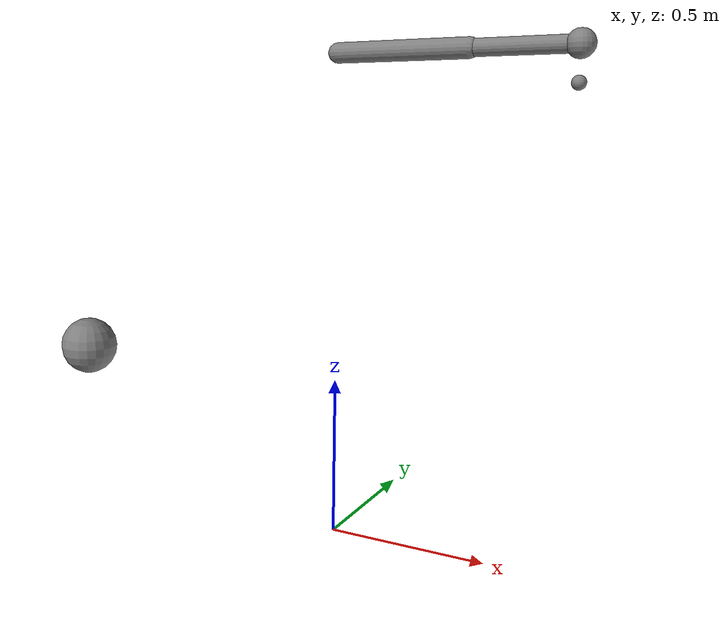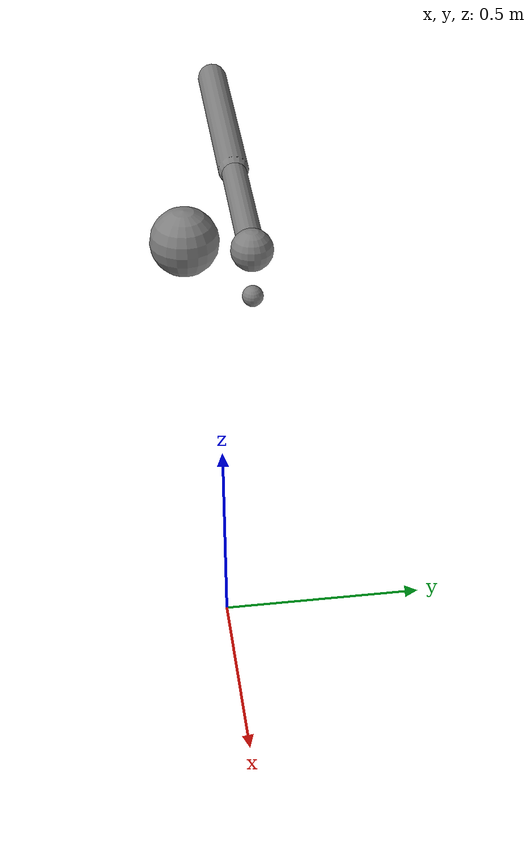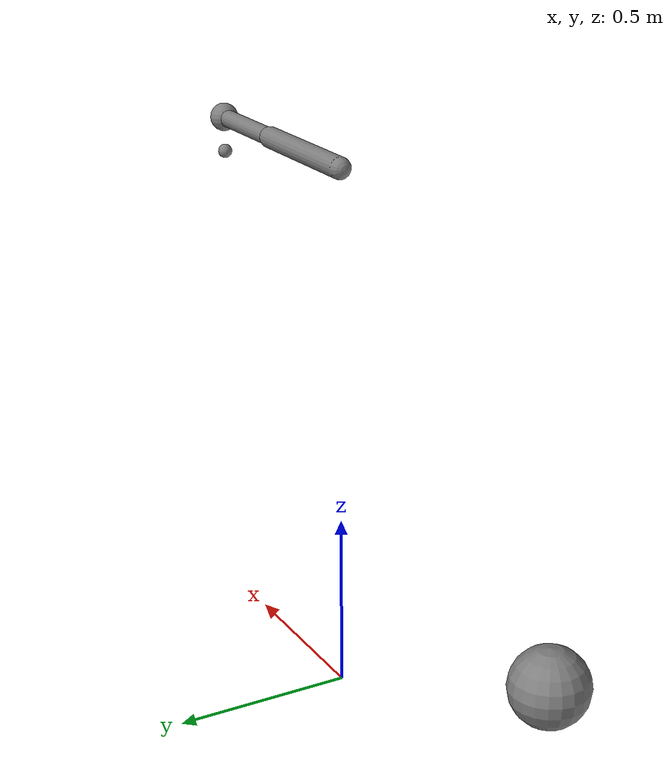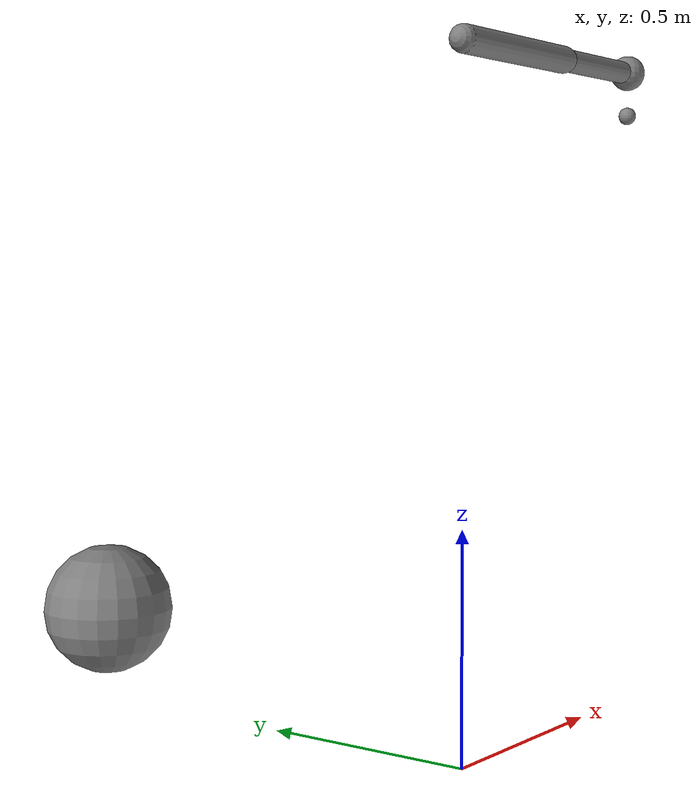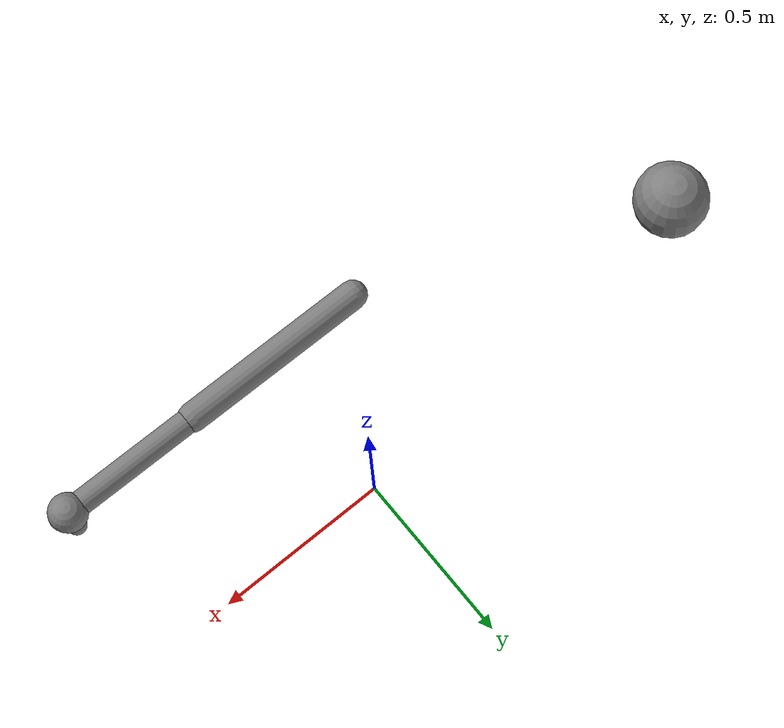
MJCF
<mujoco model="constrained">
  <compiler angle="degree"/>
  <option timestep="0.004" integrator="Euler" solver="CG" iterations="80" tolerance="1e-9"
          ls_iterations="40" ls_tolerance="0.02" cone="elliptic" impratio="1.5"/>
  <default>
    <geom contype="0" conaffinity="0" density="600"/>
    <joint damping="0.08" armature="0.02" solreffriction="0.03 0.9"
           solimpfriction="0.8 0.9 0.002 0.4 2"/>
  </default>
  <worldbody>
    <body name="cart" pos="-1 0 0.5">
      <joint name="cart_x" type="slide" axis="1 0 0" range="-0.4 0.4" margin="0.05"
             armature="0.05" damping="0.1" frictionloss="0.8" solreflimit="0.03 0.8"
             solimplimit="0.8 0.95 0.01 0.4 3" solreffriction="0.015 1"
             solimpfriction="0.85 0.95 0.002 0.5 2"/>
      <geom name="cart_geom" type="sphere" size="0.1" mass="2"/>
    </body>

    <body name="arm" pos="0 0 1.5">
      <joint name="shoulder" type="hinge" axis="0 1 0" range="-40 50" margin="0.1"
             stiffness="0.5" frictionloss="0.4" solreflimit="0.04 1.2"
             solimplimit="0.7 0.9 0.05 0.5 2"/>
      <geom name="upper" type="capsule" fromto="0 0 0 0.4 0 0" size="0.03" mass="1.5"/>
      <body name="fore" pos="0.4 0 0">
        <joint name="elbow" type="hinge" axis="0 1 0" range="-100 10" margin="0.05"
               frictionloss="0.3" solreflimit="-400 -15" solimplimit="0.85 0.95 0.02 0.6 2.5"/>
        <geom name="lower" type="capsule" fromto="0 0 0 0.3 0 0" size="0.025" mass="1"/>
        <body name="hand" pos="0.3 0 0">
          <joint name="wrist" type="ball" range="0 50" margin="0.08" frictionloss="0.15"
                 solreflimit="0.05 1" solimplimit="0.8 0.9 0.03 0.5 2"/>
          <geom name="palm" type="sphere" size="0.04" mass="0.5"/>
          <body name="finger" pos="0 0 -0.1">
            <joint name="finger" type="slide" axis="0 0 1" range="-0.05 0.05" margin="0.01"
                   frictionloss="0.2" solreflimit="0.005 1"/>
            <geom name="tip" type="sphere" size="0.02" mass="0.2"/>
          </body>
        </body>
      </body>
    </body>
  </worldbody>
  <tendon>
    <fixed name="couple" limited="true" range="-0.5 0.6" margin="0.05" frictionloss="0.25"
           solreflimit="0.05 1" solimplimit="0.8 0.9 0.02 0.5 2" solreffriction="0.04 0.8"
           solimpfriction="0.75 0.85 0.004 0.5 2">
      <joint joint="shoulder" coef="1"/>
      <joint joint="elbow" coef="0.5"/>
    </fixed>
  </tendon>
  <actuator>
    <motor name="m_shoulder" joint="shoulder" gear="6" ctrlrange="-1 1"/>
    <position name="p_cart" joint="cart_x" kp="30" ctrlrange="-0.5 0.5"/>
  </actuator>
</mujoco>
